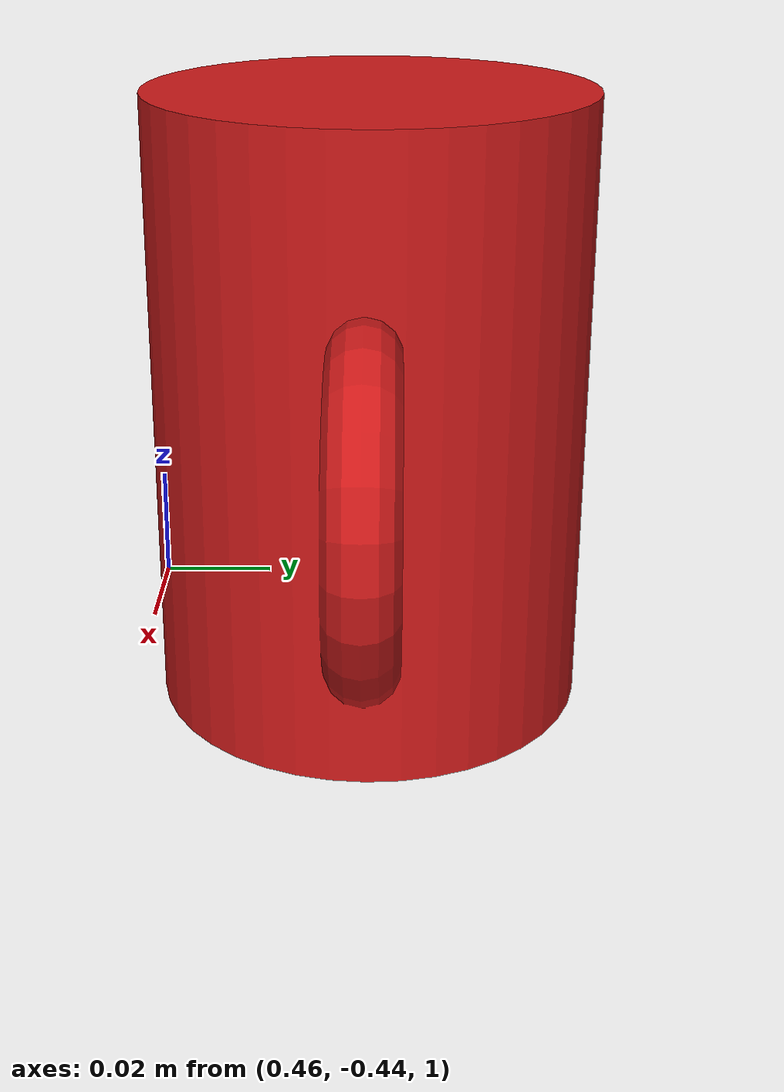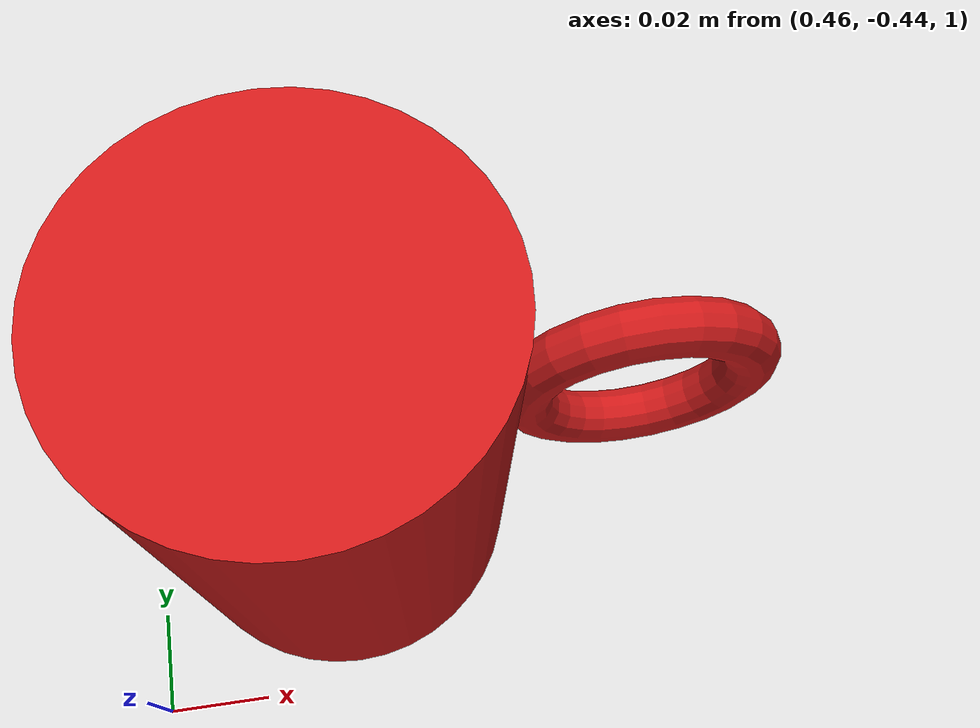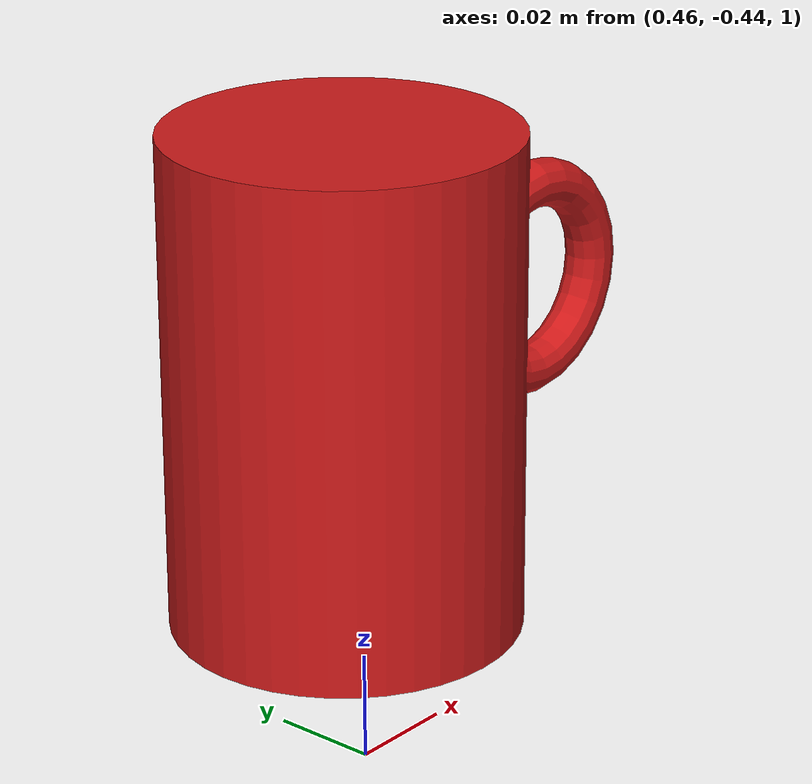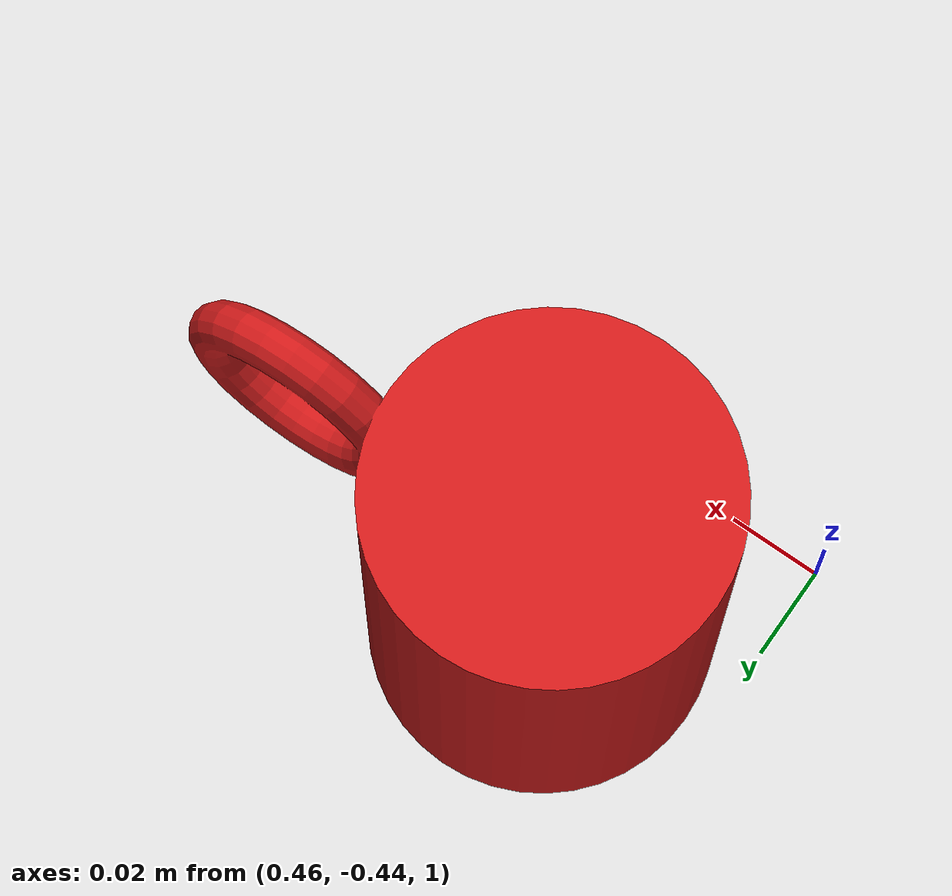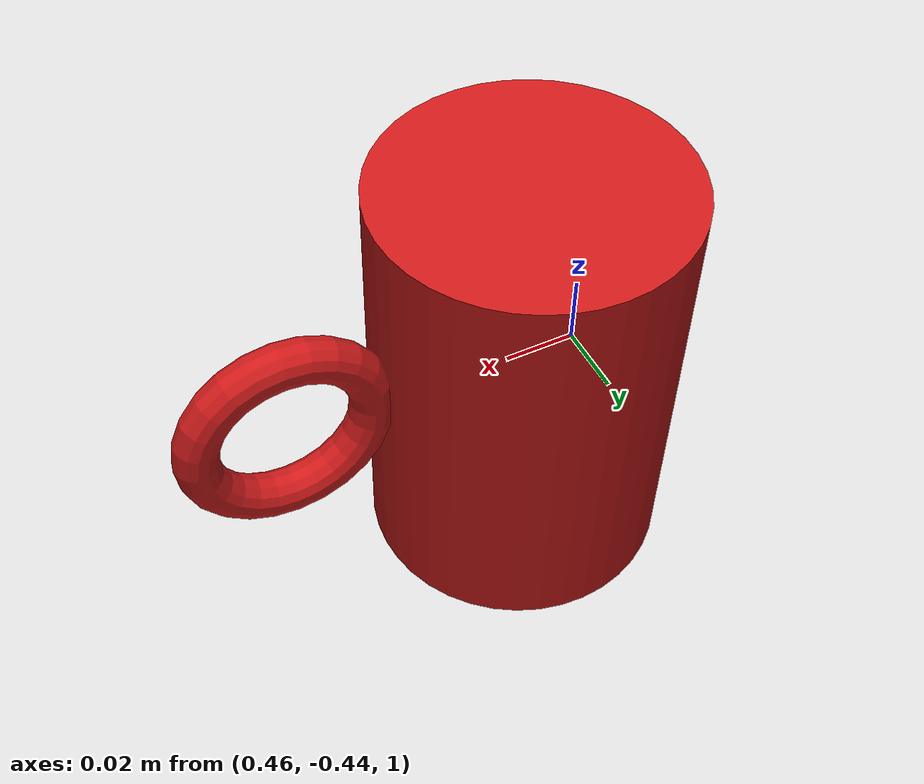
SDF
<?xml version="1.0" ?>
<sdf version="1.4">
  <world name="default">
    <scene>
      <background>0.8117 0.8705 0.8784 1</background>
    </scene>
    <model name="ground_plane">
      <static>true</static>
      <pose>0 0 0 0 0 0</pose>
      <link name="link">
        <collision name="collision">
          <geometry>
            <plane>
              <normal>0 0 1</normal>
              <size>100 100</size>
            </plane>
          </geometry>
          <surface>
            <friction>
              <ode>
                <mu>100</mu>
                <mu2>50</mu2>
              </ode>
            </friction>
          </surface>
        </collision>
        <visual name="visual">
          <cast_shadows>false</cast_shadows>
          <geometry>
            <plane>
              <normal>0 0 1</normal>
              <size>100 100</size>
            </plane>
          </geometry>
          <material>
            <ambient>0.8117 0.8705 0.8784 1</ambient>
            <diffuse>0.8117 0.8705 0.8784 1</diffuse>
          </material>
        </visual>
      </link>
    </model>
    <include>
      <uri>model://sun</uri>
    </include>
    <physics type='ode'>
      <max_step_size>0.001</max_step_size>
      <real_time_factor>1</real_time_factor>
      <real_time_update_rate>0</real_time_update_rate>
      <gravity>0 0 -9.8</gravity>
    </physics>
    <model name='coffee_mug'>
      <pose>0.5 -0.4 1.0 0 0 0</pose>
      <static>0</static>
      <link name='link'>
        <gravity>0</gravity>
        <collision name='collision'>
          <geometry>
            <mesh>
              <uri>/home/ayse/Desktop/RecedingHorizon/src/simulation_environment/meshes/coffee_mug.dae</uri>
              <scale>1.0 1.0 1.0</scale>
            </mesh>
          </geometry>
          <max_contacts>10</max_contacts>
          <surface>
            <contact><ode/></contact>
            <bounce/>
            <friction><ode/></friction>
          </surface>
        </collision>
        <visual name='visual'>
          <geometry>
            <mesh>
              <uri>/home/ayse/Desktop/RecedingHorizon/src/simulation_environment/meshes/coffee_mug.dae</uri>
              <scale>1.0 1.0 1.0</scale>
            </mesh>
          </geometry>
          <material>
            <ambient>0.8 0.1 0.1 1</ambient>
            <diffuse>0.8 0.1 0.1 1</diffuse>
            <specular>0.8 0.1 0.1 1</specular>
            <emissive>0 0 0 0</emissive>
          </material>
        </visual>
        <velocity_decay>
          <linear>0</linear>
          <angular>0</angular>
        </velocity_decay>
        <self_collide>0</self_collide>
        <kinematic>0</kinematic>
        <gravity>0</gravity>
      </link>
    </model>
  </world>
</sdf>
